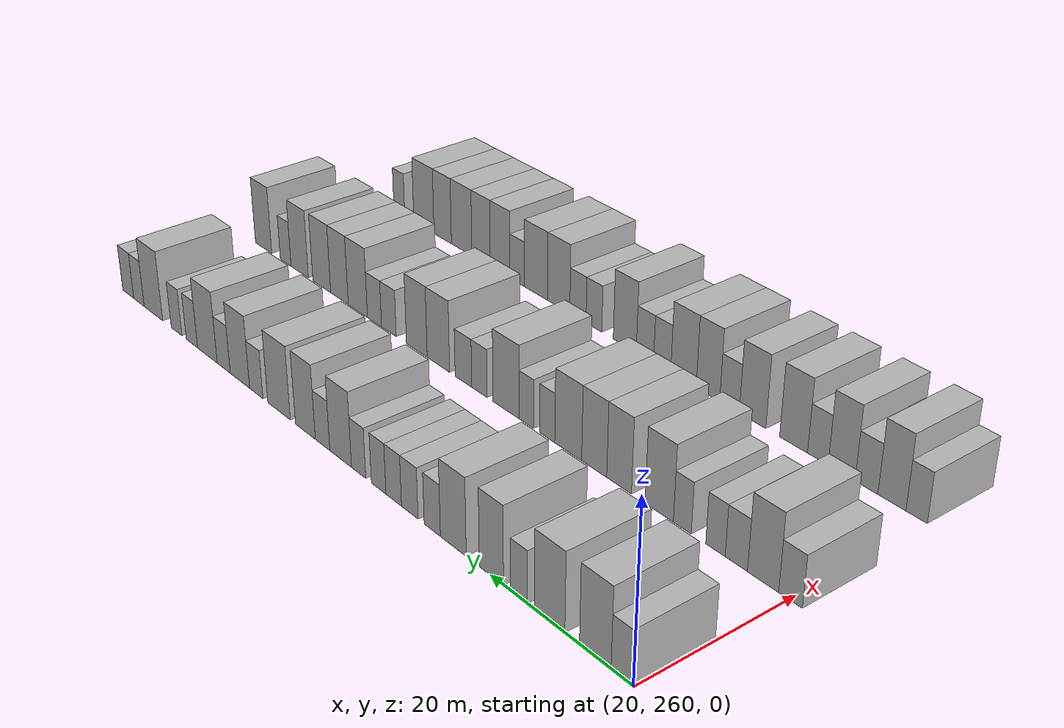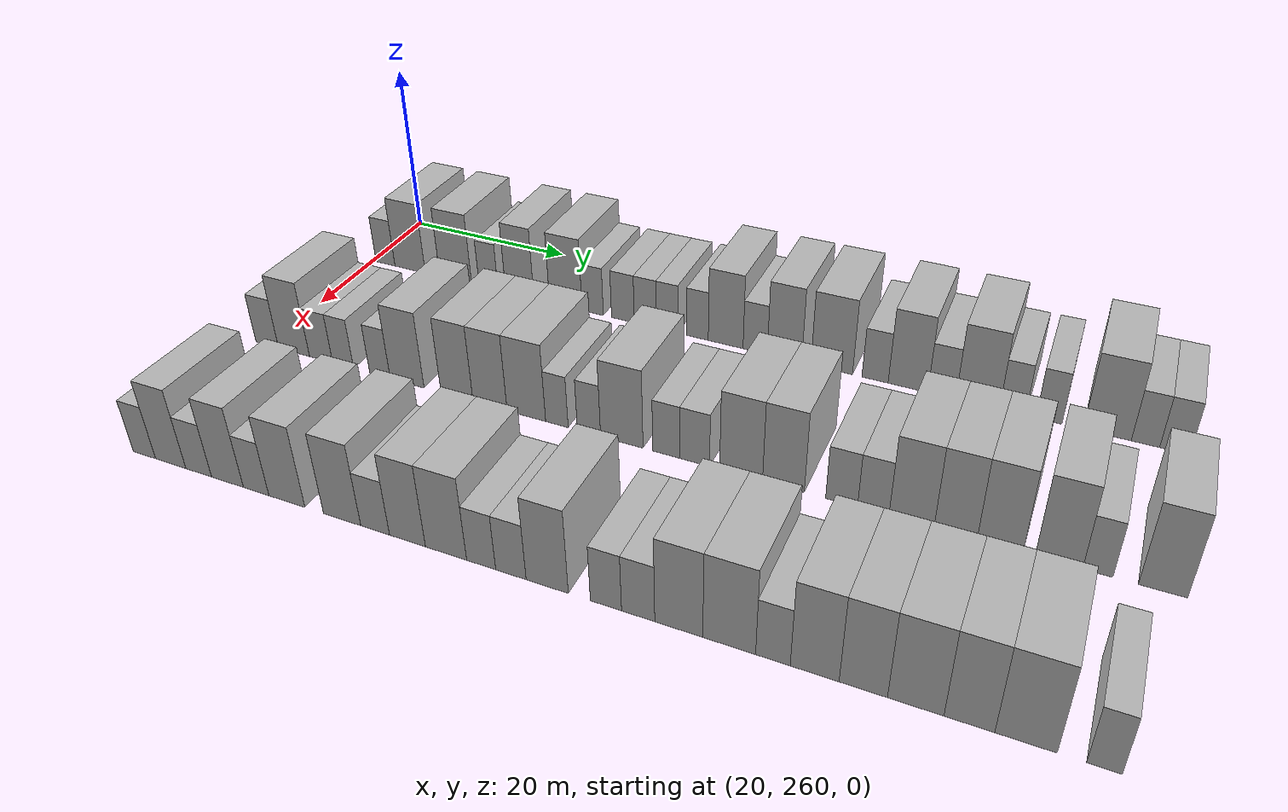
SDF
<sdf version="1.6">
 <world name="default">
  <model name="building_155">
   <static>1</static>
   <pose>25.0000 261.6458 0 0.000000 0.000000 0.000000</pose>
   <link name="link">
    <pose>0 0 3.00 0 0 0</pose>
    <collision name="collision"><geometry><box><size>10.0000 2.6609 6.0000</size></box></geometry></collision>
    <visual name="visual">
     <cast_shadows>0</cast_shadows>
     <geometry><box><size>10.0000 2.6609 6.0000</size></box></geometry>
     <material>
      <script>
       <uri>model://HANNAS_wall/materials/scripts</uri>
       <uri>model://HANNAS_wall/materials/textures</uri>
       <name>vrc/HANNAS_wall</name>
      </script>
     </material>
    </visual>
   </link>
  </model>
  <model name="building_156">
   <static>1</static>
   <pose>25.0000 265.0822 0 0.000000 0.000000 0.000000</pose>
   <link name="link">
    <pose>0 0 4.50 0 0 0</pose>
    <collision name="collision"><geometry><box><size>10.0000 4.2119 9.0000</size></box></geometry></collision>
    <visual name="visual">
     <cast_shadows>0</cast_shadows>
     <geometry><box><size>10.0000 4.2119 9.0000</size></box></geometry>
     <material>
      <script>
       <uri>model://HANNAS_wall/materials/scripts</uri>
       <uri>model://HANNAS_wall/materials/textures</uri>
       <name>vrc/HANNAS_wall</name>
      </script>
     </material>
    </visual>
   </link>
  </model>
  <model name="building_157">
   <static>1</static>
   <pose>25.0000 271.3295 0 0.000000 0.000000 0.000000</pose>
   <link name="link">
    <pose>0 0 4.50 0 0 0</pose>
    <collision name="collision"><geometry><box><size>10.0000 4.2827 9.0000</size></box></geometry></collision>
    <visual name="visual">
     <cast_shadows>0</cast_shadows>
     <geometry><box><size>10.0000 4.2827 9.0000</size></box></geometry>
     <material>
      <script>
       <uri>model://HANNAS_wall/materials/scripts</uri>
       <uri>model://HANNAS_wall/materials/textures</uri>
       <name>vrc/HANNAS_wall</name>
      </script>
     </material>
    </visual>
   </link>
  </model>
  <model name="building_158">
   <static>1</static>
   <pose>25.0000 275.7166 0 0.000000 0.000000 0.000000</pose>
   <link name="link">
    <pose>0 0 3.00 0 0 0</pose>
    <collision name="collision"><geometry><box><size>10.0000 2.4914 6.0000</size></box></geometry></collision>
    <visual name="visual">
     <cast_shadows>0</cast_shadows>
     <geometry><box><size>10.0000 2.4914 6.0000</size></box></geometry>
     <material>
      <script>
       <uri>model://HANNAS_wall/materials/scripts</uri>
       <uri>model://HANNAS_wall/materials/textures</uri>
       <name>vrc/HANNAS_wall</name>
      </script>
     </material>
    </visual>
   </link>
  </model>
  <model name="building_159">
   <static>1</static>
   <pose>25.0000 279.7860 0 0.000000 0.000000 0.000000</pose>
   <link name="link">
    <pose>0 0 4.50 0 0 0</pose>
    <collision name="collision"><geometry><box><size>10.0000 3.6475 9.0000</size></box></geometry></collision>
    <visual name="visual">
     <cast_shadows>0</cast_shadows>
     <geometry><box><size>10.0000 3.6475 9.0000</size></box></geometry>
     <material>
      <script>
       <uri>model://HANNAS_wall/materials/scripts</uri>
       <uri>model://HANNAS_wall/materials/textures</uri>
       <name>vrc/HANNAS_wall</name>
      </script>
     </material>
    </visual>
   </link>
  </model>
  <model name="building_160">
   <static>1</static>
   <pose>25.0000 285.6505 0 0.000000 0.000000 0.000000</pose>
   <link name="link">
    <pose>0 0 4.50 0 0 0</pose>
    <collision name="collision"><geometry><box><size>10.0000 4.0815 9.0000</size></box></geometry></collision>
    <visual name="visual">
     <cast_shadows>0</cast_shadows>
     <geometry><box><size>10.0000 4.0815 9.0000</size></box></geometry>
     <material>
      <script>
       <uri>model://HANNAS_wall/materials/scripts</uri>
       <uri>model://HANNAS_wall/materials/textures</uri>
       <name>vrc/HANNAS_wall</name>
      </script>
     </material>
    </visual>
   </link>
  </model>
  <model name="building_161">
   <static>1</static>
   <pose>25.0000 289.0042 0 0.000000 0.000000 0.000000</pose>
   <link name="link">
    <pose>0 0 3.00 0 0 0</pose>
    <collision name="collision"><geometry><box><size>10.0000 2.6261 6.0000</size></box></geometry></collision>
    <visual name="visual">
     <cast_shadows>0</cast_shadows>
     <geometry><box><size>10.0000 2.6261 6.0000</size></box></geometry>
     <material>
      <script>
       <uri>model://HANNAS_wall/materials/scripts</uri>
       <uri>model://HANNAS_wall/materials/textures</uri>
       <name>vrc/HANNAS_wall</name>
      </script>
     </material>
    </visual>
   </link>
  </model>
  <model name="building_162">
   <static>1</static>
   <pose>25.0000 292.6975 0 0.000000 0.000000 0.000000</pose>
   <link name="link">
    <pose>0 0 3.00 0 0 0</pose>
    <collision name="collision"><geometry><box><size>10.0000 2.7605 6.0000</size></box></geometry></collision>
    <visual name="visual">
     <cast_shadows>0</cast_shadows>
     <geometry><box><size>10.0000 2.7605 6.0000</size></box></geometry>
     <material>
      <script>
       <uri>model://HANNAS_wall/materials/scripts</uri>
       <uri>model://HANNAS_wall/materials/textures</uri>
       <name>vrc/HANNAS_wall</name>
      </script>
     </material>
    </visual>
   </link>
  </model>
  <model name="building_163">
   <static>1</static>
   <pose>25.0000 295.4054 0 0.000000 0.000000 0.000000</pose>
   <link name="link">
    <pose>0 0 3.00 0 0 0</pose>
    <collision name="collision"><geometry><box><size>10.0000 2.6553 6.0000</size></box></geometry></collision>
    <visual name="visual">
     <cast_shadows>0</cast_shadows>
     <geometry><box><size>10.0000 2.6553 6.0000</size></box></geometry>
     <material>
      <script>
       <uri>model://HANNAS_wall/materials/scripts</uri>
       <uri>model://HANNAS_wall/materials/textures</uri>
       <name>vrc/HANNAS_wall</name>
      </script>
     </material>
    </visual>
   </link>
  </model>
  <model name="building_164">
   <static>1</static>
   <pose>25.0000 297.9946 0 0.000000 0.000000 0.000000</pose>
   <link name="link">
    <pose>0 0 3.00 0 0 0</pose>
    <collision name="collision"><geometry><box><size>10.0000 2.5231 6.0000</size></box></geometry></collision>
    <visual name="visual">
     <cast_shadows>0</cast_shadows>
     <geometry><box><size>10.0000 2.5231 6.0000</size></box></geometry>
     <material>
      <script>
       <uri>model://HANNAS_wall/materials/scripts</uri>
       <uri>model://HANNAS_wall/materials/textures</uri>
       <name>vrc/HANNAS_wall</name>
      </script>
     </material>
    </visual>
   </link>
  </model>
  <model name="building_165">
   <static>1</static>
   <pose>25.0000 301.5238 0 0.000000 0.000000 0.000000</pose>
   <link name="link">
    <pose>0 0 3.00 0 0 0</pose>
    <collision name="collision"><geometry><box><size>10.0000 2.5353 6.0000</size></box></geometry></collision>
    <visual name="visual">
     <cast_shadows>0</cast_shadows>
     <geometry><box><size>10.0000 2.5353 6.0000</size></box></geometry>
     <material>
      <script>
       <uri>model://HANNAS_wall/materials/scripts</uri>
       <uri>model://HANNAS_wall/materials/textures</uri>
       <name>vrc/HANNAS_wall</name>
      </script>
     </material>
    </visual>
   </link>
  </model>
  <model name="building_166">
   <static>1</static>
   <pose>25.0000 304.7739 0 0.000000 0.000000 0.000000</pose>
   <link name="link">
    <pose>0 0 4.50 0 0 0</pose>
    <collision name="collision"><geometry><box><size>10.0000 3.9651 9.0000</size></box></geometry></collision>
    <visual name="visual">
     <cast_shadows>0</cast_shadows>
     <geometry><box><size>10.0000 3.9651 9.0000</size></box></geometry>
     <material>
      <script>
       <uri>model://HANNAS_wall/materials/scripts</uri>
       <uri>model://HANNAS_wall/materials/textures</uri>
       <name>vrc/HANNAS_wall</name>
      </script>
     </material>
    </visual>
   </link>
  </model>
  <model name="building_167">
   <static>1</static>
   <pose>25.0000 308.1156 0 0.000000 0.000000 0.000000</pose>
   <link name="link">
    <pose>0 0 3.00 0 0 0</pose>
    <collision name="collision"><geometry><box><size>10.0000 2.7183 6.0000</size></box></geometry></collision>
    <visual name="visual">
     <cast_shadows>0</cast_shadows>
     <geometry><box><size>10.0000 2.7183 6.0000</size></box></geometry>
     <material>
      <script>
       <uri>model://HANNAS_wall/materials/scripts</uri>
       <uri>model://HANNAS_wall/materials/textures</uri>
       <name>vrc/HANNAS_wall</name>
      </script>
     </material>
    </visual>
   </link>
  </model>
  <model name="building_168">
   <static>1</static>
   <pose>25.0000 311.3724 0 0.000000 0.000000 0.000000</pose>
   <link name="link">
    <pose>0 0 4.50 0 0 0</pose>
    <collision name="collision"><geometry><box><size>10.0000 3.7953 9.0000</size></box></geometry></collision>
    <visual name="visual">
     <cast_shadows>0</cast_shadows>
     <geometry><box><size>10.0000 3.7953 9.0000</size></box></geometry>
     <material>
      <script>
       <uri>model://HANNAS_wall/materials/scripts</uri>
       <uri>model://HANNAS_wall/materials/textures</uri>
       <name>vrc/HANNAS_wall</name>
      </script>
     </material>
    </visual>
   </link>
  </model>
  <model name="building_169">
   <static>1</static>
   <pose>25.0000 316.5011 0 0.000000 0.000000 0.000000</pose>
   <link name="link">
    <pose>0 0 4.50 0 0 0</pose>
    <collision name="collision"><geometry><box><size>10.0000 4.4622 9.0000</size></box></geometry></collision>
    <visual name="visual">
     <cast_shadows>0</cast_shadows>
     <geometry><box><size>10.0000 4.4622 9.0000</size></box></geometry>
     <material>
      <script>
       <uri>model://HANNAS_wall/materials/scripts</uri>
       <uri>model://HANNAS_wall/materials/textures</uri>
       <name>vrc/HANNAS_wall</name>
      </script>
     </material>
    </visual>
   </link>
  </model>
  <model name="building_170">
   <static>1</static>
   <pose>25.0000 321.0979 0 0.000000 0.000000 0.000000</pose>
   <link name="link">
    <pose>0 0 3.00 0 0 0</pose>
    <collision name="collision"><geometry><box><size>10.0000 2.7314 6.0000</size></box></geometry></collision>
    <visual name="visual">
     <cast_shadows>0</cast_shadows>
     <geometry><box><size>10.0000 2.7314 6.0000</size></box></geometry>
     <material>
      <script>
       <uri>model://HANNAS_wall/materials/scripts</uri>
       <uri>model://HANNAS_wall/materials/textures</uri>
       <name>vrc/HANNAS_wall</name>
      </script>
     </material>
    </visual>
   </link>
  </model>
  <model name="building_171">
   <static>1</static>
   <pose>25.0000 324.4980 0 0.000000 0.000000 0.000000</pose>
   <link name="link">
    <pose>0 0 4.50 0 0 0</pose>
    <collision name="collision"><geometry><box><size>10.0000 4.0687 9.0000</size></box></geometry></collision>
    <visual name="visual">
     <cast_shadows>0</cast_shadows>
     <geometry><box><size>10.0000 4.0687 9.0000</size></box></geometry>
     <material>
      <script>
       <uri>model://HANNAS_wall/materials/scripts</uri>
       <uri>model://HANNAS_wall/materials/textures</uri>
       <name>vrc/HANNAS_wall</name>
      </script>
     </material>
    </visual>
   </link>
  </model>
  <model name="building_172">
   <static>1</static>
   <pose>25.0000 327.9402 0 0.000000 0.000000 0.000000</pose>
   <link name="link">
    <pose>0 0 3.00 0 0 0</pose>
    <collision name="collision"><geometry><box><size>10.0000 2.8157 6.0000</size></box></geometry></collision>
    <visual name="visual">
     <cast_shadows>0</cast_shadows>
     <geometry><box><size>10.0000 2.8157 6.0000</size></box></geometry>
     <material>
      <script>
       <uri>model://HANNAS_wall/materials/scripts</uri>
       <uri>model://HANNAS_wall/materials/textures</uri>
       <name>vrc/HANNAS_wall</name>
      </script>
     </material>
    </visual>
   </link>
  </model>
  <model name="building_173">
   <static>1</static>
   <pose>25.0000 331.5084 0 0.000000 0.000000 0.000000</pose>
   <link name="link">
    <pose>0 0 4.50 0 0 0</pose>
    <collision name="collision"><geometry><box><size>10.0000 4.3207 9.0000</size></box></geometry></collision>
    <visual name="visual">
     <cast_shadows>0</cast_shadows>
     <geometry><box><size>10.0000 4.3207 9.0000</size></box></geometry>
     <material>
      <script>
       <uri>model://HANNAS_wall/materials/scripts</uri>
       <uri>model://HANNAS_wall/materials/textures</uri>
       <name>vrc/HANNAS_wall</name>
      </script>
     </material>
    </visual>
   </link>
  </model>
  <model name="building_174">
   <static>1</static>
   <pose>25.0000 334.9396 0 0.000000 0.000000 0.000000</pose>
   <link name="link">
    <pose>0 0 3.00 0 0 0</pose>
    <collision name="collision"><geometry><box><size>10.0000 2.5417 6.0000</size></box></geometry></collision>
    <visual name="visual">
     <cast_shadows>0</cast_shadows>
     <geometry><box><size>10.0000 2.5417 6.0000</size></box></geometry>
     <material>
      <script>
       <uri>model://HANNAS_wall/materials/scripts</uri>
       <uri>model://HANNAS_wall/materials/textures</uri>
       <name>vrc/HANNAS_wall</name>
      </script>
     </material>
    </visual>
   </link>
  </model>
  <model name="building_175">
   <static>1</static>
   <pose>25.0000 338.4417 0 0.000000 0.000000 0.000000</pose>
   <link name="link">
    <pose>0 0 3.00 0 0 0</pose>
    <collision name="collision"><geometry><box><size>10.0000 2.4625 6.0000</size></box></geometry></collision>
    <visual name="visual">
     <cast_shadows>0</cast_shadows>
     <geometry><box><size>10.0000 2.4625 6.0000</size></box></geometry>
     <material>
      <script>
       <uri>model://HANNAS_wall/materials/scripts</uri>
       <uri>model://HANNAS_wall/materials/textures</uri>
       <name>vrc/HANNAS_wall</name>
      </script>
     </material>
    </visual>
   </link>
  </model>
  <model name="building_176">
   <static>1</static>
   <pose>25.0000 343.8844 0 0.000000 0.000000 0.000000</pose>
   <link name="link">
    <pose>0 0 4.50 0 0 0</pose>
    <collision name="collision"><geometry><box><size>10.0000 4.4229 9.0000</size></box></geometry></collision>
    <visual name="visual">
     <cast_shadows>0</cast_shadows>
     <geometry><box><size>10.0000 4.4229 9.0000</size></box></geometry>
     <material>
      <script>
       <uri>model://HANNAS_wall/materials/scripts</uri>
       <uri>model://HANNAS_wall/materials/textures</uri>
       <name>vrc/HANNAS_wall</name>
      </script>
     </material>
    </visual>
   </link>
  </model>
  <model name="building_177">
   <static>1</static>
   <pose>25.0000 347.3786 0 0.000000 0.000000 0.000000</pose>
   <link name="link">
    <pose>0 0 3.00 0 0 0</pose>
    <collision name="collision"><geometry><box><size>10.0000 2.5656 6.0000</size></box></geometry></collision>
    <visual name="visual">
     <cast_shadows>0</cast_shadows>
     <geometry><box><size>10.0000 2.5656 6.0000</size></box></geometry>
     <material>
      <script>
       <uri>model://HANNAS_wall/materials/scripts</uri>
       <uri>model://HANNAS_wall/materials/textures</uri>
       <name>vrc/HANNAS_wall</name>
      </script>
     </material>
    </visual>
   </link>
  </model>
  <model name="building_178">
   <static>1</static>
   <pose>25.0000 350.0049 0 0.000000 0.000000 0.000000</pose>
   <link name="link">
    <pose>0 0 3.00 0 0 0</pose>
    <collision name="collision"><geometry><box><size>10.0000 2.6870 6.0000</size></box></geometry></collision>
    <visual name="visual">
     <cast_shadows>0</cast_shadows>
     <geometry><box><size>10.0000 2.6870 6.0000</size></box></geometry>
     <material>
      <script>
       <uri>model://HANNAS_wall/materials/scripts</uri>
       <uri>model://HANNAS_wall/materials/textures</uri>
       <name>vrc/HANNAS_wall</name>
      </script>
     </material>
    </visual>
   </link>
  </model>
  <model name="building_331">
   <static>1</static>
   <pose>44.0000 259.8209 0 0.000000 0.000000 0.000000</pose>
   <link name="link">
    <pose>0 0 3.00 0 0 0</pose>
    <collision name="collision"><geometry><box><size>10.0000 2.9666 6.0000</size></box></geometry></collision>
    <visual name="visual">
     <cast_shadows>0</cast_shadows>
     <geometry><box><size>10.0000 2.9666 6.0000</size></box></geometry>
     <material>
      <script>
       <uri>model://HANNAS_wall/materials/scripts</uri>
       <uri>model://HANNAS_wall/materials/textures</uri>
       <name>vrc/HANNAS_wall</name>
      </script>
     </material>
    </visual>
   </link>
  </model>
  <model name="building_332">
   <static>1</static>
   <pose>44.0000 263.3136 0 0.000000 0.000000 0.000000</pose>
   <link name="link">
    <pose>0 0 4.50 0 0 0</pose>
    <collision name="collision"><geometry><box><size>10.0000 4.0188 9.0000</size></box></geometry></collision>
    <visual name="visual">
     <cast_shadows>0</cast_shadows>
     <geometry><box><size>10.0000 4.0188 9.0000</size></box></geometry>
     <material>
      <script>
       <uri>model://HANNAS_wall/materials/scripts</uri>
       <uri>model://HANNAS_wall/materials/textures</uri>
       <name>vrc/HANNAS_wall</name>
      </script>
     </material>
    </visual>
   </link>
  </model>
  <model name="building_333">
   <static>1</static>
   <pose>44.0000 266.7968 0 0.000000 0.000000 0.000000</pose>
   <link name="link">
    <pose>0 0 3.00 0 0 0</pose>
    <collision name="collision"><geometry><box><size>10.0000 2.9476 6.0000</size></box></geometry></collision>
    <visual name="visual">
     <cast_shadows>0</cast_shadows>
     <geometry><box><size>10.0000 2.9476 6.0000</size></box></geometry>
     <material>
      <script>
       <uri>model://HANNAS_wall/materials/scripts</uri>
       <uri>model://HANNAS_wall/materials/textures</uri>
       <name>vrc/HANNAS_wall</name>
      </script>
     </material>
    </visual>
   </link>
  </model>
  <model name="building_334">
   <static>1</static>
   <pose>44.0000 269.5826 0 0.000000 0.000000 0.000000</pose>
   <link name="link">
    <pose>0 0 3.00 0 0 0</pose>
    <collision name="collision"><geometry><box><size>10.0000 2.6240 6.0000</size></box></geometry></collision>
    <visual name="visual">
     <cast_shadows>0</cast_shadows>
     <geometry><box><size>10.0000 2.6240 6.0000</size></box></geometry>
     <material>
      <script>
       <uri>model://HANNAS_wall/materials/scripts</uri>
       <uri>model://HANNAS_wall/materials/textures</uri>
       <name>vrc/HANNAS_wall</name>
      </script>
     </material>
    </visual>
   </link>
  </model>
  <model name="building_335">
   <static>1</static>
   <pose>44.0000 274.1465 0 0.000000 0.000000 0.000000</pose>
   <link name="link">
    <pose>0 0 3.00 0 0 0</pose>
    <collision name="collision"><geometry><box><size>10.0000 2.5037 6.0000</size></box></geometry></collision>
    <visual name="visual">
     <cast_shadows>0</cast_shadows>
     <geometry><box><size>10.0000 2.5037 6.0000</size></box></geometry>
     <material>
      <script>
       <uri>model://HANNAS_wall/materials/scripts</uri>
       <uri>model://HANNAS_wall/materials/textures</uri>
       <name>vrc/HANNAS_wall</name>
      </script>
     </material>
    </visual>
   </link>
  </model>
  <model name="building_336">
   <static>1</static>
   <pose>44.0000 277.4298 0 0.000000 0.000000 0.000000</pose>
   <link name="link">
    <pose>0 0 4.50 0 0 0</pose>
    <collision name="collision"><geometry><box><size>10.0000 4.0631 9.0000</size></box></geometry></collision>
    <visual name="visual">
     <cast_shadows>0</cast_shadows>
     <geometry><box><size>10.0000 4.0631 9.0000</size></box></geometry>
     <material>
      <script>
       <uri>model://HANNAS_wall/materials/scripts</uri>
       <uri>model://HANNAS_wall/materials/textures</uri>
       <name>vrc/HANNAS_wall</name>
      </script>
     </material>
    </visual>
   </link>
  </model>
  <model name="building_337">
   <static>1</static>
   <pose>44.0000 283.3252 0 0.000000 0.000000 0.000000</pose>
   <link name="link">
    <pose>0 0 4.50 0 0 0</pose>
    <collision name="collision"><geometry><box><size>10.0000 3.7276 9.0000</size></box></geometry></collision>
    <visual name="visual">
     <cast_shadows>0</cast_shadows>
     <geometry><box><size>10.0000 3.7276 9.0000</size></box></geometry>
     <material>
      <script>
       <uri>model://HANNAS_wall/materials/scripts</uri>
       <uri>model://HANNAS_wall/materials/textures</uri>
       <name>vrc/HANNAS_wall</name>
      </script>
     </material>
    </visual>
   </link>
  </model>
  <model name="building_338">
   <static>1</static>
   <pose>44.0000 287.1293 0 0.000000 0.000000 0.000000</pose>
   <link name="link">
    <pose>0 0 4.50 0 0 0</pose>
    <collision name="collision"><geometry><box><size>10.0000 3.8807 9.0000</size></box></geometry></collision>
    <visual name="visual">
     <cast_shadows>0</cast_shadows>
     <geometry><box><size>10.0000 3.8807 9.0000</size></box></geometry>
     <material>
      <script>
       <uri>model://HANNAS_wall/materials/scripts</uri>
       <uri>model://HANNAS_wall/materials/textures</uri>
       <name>vrc/HANNAS_wall</name>
      </script>
     </material>
    </visual>
   </link>
  </model>
  <model name="building_339">
   <static>1</static>
   <pose>44.0000 291.2141 0 0.000000 0.000000 0.000000</pose>
   <link name="link">
    <pose>0 0 4.50 0 0 0</pose>
    <collision name="collision"><geometry><box><size>10.0000 4.2888 9.0000</size></box></geometry></collision>
    <visual name="visual">
     <cast_shadows>0</cast_shadows>
     <geometry><box><size>10.0000 4.2888 9.0000</size></box></geometry>
     <material>
      <script>
       <uri>model://HANNAS_wall/materials/scripts</uri>
       <uri>model://HANNAS_wall/materials/textures</uri>
       <name>vrc/HANNAS_wall</name>
      </script>
     </material>
    </visual>
   </link>
  </model>
  <model name="building_340">
   <static>1</static>
   <pose>44.0000 294.5865 0 0.000000 0.000000 0.000000</pose>
   <link name="link">
    <pose>0 0 3.00 0 0 0</pose>
    <collision name="collision"><geometry><box><size>10.0000 2.4561 6.0000</size></box></geometry></collision>
    <visual name="visual">
     <cast_shadows>0</cast_shadows>
     <geometry><box><size>10.0000 2.4561 6.0000</size></box></geometry>
     <material>
      <script>
       <uri>model://HANNAS_wall/materials/scripts</uri>
       <uri>model://HANNAS_wall/materials/textures</uri>
       <name>vrc/HANNAS_wall</name>
      </script>
     </material>
    </visual>
   </link>
  </model>
  <model name="building_341">
   <static>1</static>
   <pose>44.0000 298.0540 0 0.000000 0.000000 0.000000</pose>
   <link name="link">
    <pose>0 0 3.00 0 0 0</pose>
    <collision name="collision"><geometry><box><size>10.0000 2.4787 6.0000</size></box></geometry></collision>
    <visual name="visual">
     <cast_shadows>0</cast_shadows>
     <geometry><box><size>10.0000 2.4787 6.0000</size></box></geometry>
     <material>
      <script>
       <uri>model://HANNAS_wall/materials/scripts</uri>
       <uri>model://HANNAS_wall/materials/textures</uri>
       <name>vrc/HANNAS_wall</name>
      </script>
     </material>
    </visual>
   </link>
  </model>
  <model name="building_342">
   <static>1</static>
   <pose>44.0000 301.5186 0 0.000000 0.000000 0.000000</pose>
   <link name="link">
    <pose>0 0 4.50 0 0 0</pose>
    <collision name="collision"><geometry><box><size>10.0000 4.4506 9.0000</size></box></geometry></collision>
    <visual name="visual">
     <cast_shadows>0</cast_shadows>
     <geometry><box><size>10.0000 4.4506 9.0000</size></box></geometry>
     <material>
      <script>
       <uri>model://HANNAS_wall/materials/scripts</uri>
       <uri>model://HANNAS_wall/materials/textures</uri>
       <name>vrc/HANNAS_wall</name>
      </script>
     </material>
    </visual>
   </link>
  </model>
  <model name="building_343">
   <static>1</static>
   <pose>44.0000 306.1152 0 0.000000 0.000000 0.000000</pose>
   <link name="link">
    <pose>0 0 3.00 0 0 0</pose>
    <collision name="collision"><geometry><box><size>10.0000 2.7424 6.0000</size></box></geometry></collision>
    <visual name="visual">
     <cast_shadows>0</cast_shadows>
     <geometry><box><size>10.0000 2.7424 6.0000</size></box></geometry>
     <material>
      <script>
       <uri>model://HANNAS_wall/materials/scripts</uri>
       <uri>model://HANNAS_wall/materials/textures</uri>
       <name>vrc/HANNAS_wall</name>
      </script>
     </material>
    </visual>
   </link>
  </model>
  <model name="building_344">
   <static>1</static>
   <pose>44.0000 308.9855 0 0.000000 0.000000 0.000000</pose>
   <link name="link">
    <pose>0 0 3.00 0 0 0</pose>
    <collision name="collision"><geometry><box><size>10.0000 2.9982 6.0000</size></box></geometry></collision>
    <visual name="visual">
     <cast_shadows>0</cast_shadows>
     <geometry><box><size>10.0000 2.9982 6.0000</size></box></geometry>
     <material>
      <script>
       <uri>model://HANNAS_wall/materials/scripts</uri>
       <uri>model://HANNAS_wall/materials/textures</uri>
       <name>vrc/HANNAS_wall</name>
      </script>
     </material>
    </visual>
   </link>
  </model>
  <model name="building_345">
   <static>1</static>
   <pose>44.0000 313.5788 0 0.000000 0.000000 0.000000</pose>
   <link name="link">
    <pose>0 0 4.50 0 0 0</pose>
    <collision name="collision"><geometry><box><size>10.0000 4.1884 9.0000</size></box></geometry></collision>
    <visual name="visual">
     <cast_shadows>0</cast_shadows>
     <geometry><box><size>10.0000 4.1884 9.0000</size></box></geometry>
     <material>
      <script>
       <uri>model://HANNAS_wall/materials/scripts</uri>
       <uri>model://HANNAS_wall/materials/textures</uri>
       <name>vrc/HANNAS_wall</name>
      </script>
     </material>
    </visual>
   </link>
  </model>
  <model name="building_346">
   <static>1</static>
   <pose>44.0000 317.6619 0 0.000000 0.000000 0.000000</pose>
   <link name="link">
    <pose>0 0 4.50 0 0 0</pose>
    <collision name="collision"><geometry><box><size>10.0000 3.9777 9.0000</size></box></geometry></collision>
    <visual name="visual">
     <cast_shadows>0</cast_shadows>
     <geometry><box><size>10.0000 3.9777 9.0000</size></box></geometry>
     <material>
      <script>
       <uri>model://HANNAS_wall/materials/scripts</uri>
       <uri>model://HANNAS_wall/materials/textures</uri>
       <name>vrc/HANNAS_wall</name>
      </script>
     </material>
    </visual>
   </link>
  </model>
  <model name="building_347">
   <static>1</static>
   <pose>44.0000 323.1143 0 0.000000 0.000000 0.000000</pose>
   <link name="link">
    <pose>0 0 3.00 0 0 0</pose>
    <collision name="collision"><geometry><box><size>10.0000 2.9271 6.0000</size></box></geometry></collision>
    <visual name="visual">
     <cast_shadows>0</cast_shadows>
     <geometry><box><size>10.0000 2.9271 6.0000</size></box></geometry>
     <material>
      <script>
       <uri>model://HANNAS_wall/materials/scripts</uri>
       <uri>model://HANNAS_wall/materials/textures</uri>
       <name>vrc/HANNAS_wall</name>
      </script>
     </material>
    </visual>
   </link>
  </model>
  <model name="building_348">
   <static>1</static>
   <pose>44.0000 325.9999 0 0.000000 0.000000 0.000000</pose>
   <link name="link">
    <pose>0 0 3.00 0 0 0</pose>
    <collision name="collision"><geometry><box><size>10.0000 2.8441 6.0000</size></box></geometry></collision>
    <visual name="visual">
     <cast_shadows>0</cast_shadows>
     <geometry><box><size>10.0000 2.8441 6.0000</size></box></geometry>
     <material>
      <script>
       <uri>model://HANNAS_wall/materials/scripts</uri>
       <uri>model://HANNAS_wall/materials/textures</uri>
       <name>vrc/HANNAS_wall</name>
      </script>
     </material>
    </visual>
   </link>
  </model>
  <model name="building_349">
   <static>1</static>
   <pose>44.0000 329.4148 0 0.000000 0.000000 0.000000</pose>
   <link name="link">
    <pose>0 0 4.50 0 0 0</pose>
    <collision name="collision"><geometry><box><size>10.0000 3.9857 9.0000</size></box></geometry></collision>
    <visual name="visual">
     <cast_shadows>0</cast_shadows>
     <geometry><box><size>10.0000 3.9857 9.0000</size></box></geometry>
     <material>
      <script>
       <uri>model://HANNAS_wall/materials/scripts</uri>
       <uri>model://HANNAS_wall/materials/textures</uri>
       <name>vrc/HANNAS_wall</name>
      </script>
     </material>
    </visual>
   </link>
  </model>
  <model name="building_350">
   <static>1</static>
   <pose>44.0000 333.2689 0 0.000000 0.000000 0.000000</pose>
   <link name="link">
    <pose>0 0 4.50 0 0 0</pose>
    <collision name="collision"><geometry><box><size>10.0000 3.7225 9.0000</size></box></geometry></collision>
    <visual name="visual">
     <cast_shadows>0</cast_shadows>
     <geometry><box><size>10.0000 3.7225 9.0000</size></box></geometry>
     <material>
      <script>
       <uri>model://HANNAS_wall/materials/scripts</uri>
       <uri>model://HANNAS_wall/materials/textures</uri>
       <name>vrc/HANNAS_wall</name>
      </script>
     </material>
    </visual>
   </link>
  </model>
  <model name="building_351">
   <static>1</static>
   <pose>44.0000 337.0704 0 0.000000 0.000000 0.000000</pose>
   <link name="link">
    <pose>0 0 4.50 0 0 0</pose>
    <collision name="collision"><geometry><box><size>10.0000 3.8805 9.0000</size></box></geometry></collision>
    <visual name="visual">
     <cast_shadows>0</cast_shadows>
     <geometry><box><size>10.0000 3.8805 9.0000</size></box></geometry>
     <material>
      <script>
       <uri>model://HANNAS_wall/materials/scripts</uri>
       <uri>model://HANNAS_wall/materials/textures</uri>
       <name>vrc/HANNAS_wall</name>
      </script>
     </material>
    </visual>
   </link>
  </model>
  <model name="building_352">
   <static>1</static>
   <pose>44.0000 341.9493 0 0.000000 0.000000 0.000000</pose>
   <link name="link">
    <pose>0 0 4.50 0 0 0</pose>
    <collision name="collision"><geometry><box><size>10.0000 3.8773 9.0000</size></box></geometry></collision>
    <visual name="visual">
     <cast_shadows>0</cast_shadows>
     <geometry><box><size>10.0000 3.8773 9.0000</size></box></geometry>
     <material>
      <script>
       <uri>model://HANNAS_wall/materials/scripts</uri>
       <uri>model://HANNAS_wall/materials/textures</uri>
       <name>vrc/HANNAS_wall</name>
      </script>
     </material>
    </visual>
   </link>
  </model>
  <model name="building_353">
   <static>1</static>
   <pose>44.0000 345.1009 0 0.000000 0.000000 0.000000</pose>
   <link name="link">
    <pose>0 0 3.00 0 0 0</pose>
    <collision name="collision"><geometry><box><size>10.0000 2.4259 6.0000</size></box></geometry></collision>
    <visual name="visual">
     <cast_shadows>0</cast_shadows>
     <geometry><box><size>10.0000 2.4259 6.0000</size></box></geometry>
     <material>
      <script>
       <uri>model://HANNAS_wall/materials/scripts</uri>
       <uri>model://HANNAS_wall/materials/textures</uri>
       <name>vrc/HANNAS_wall</name>
      </script>
     </material>
    </visual>
   </link>
  </model>
  <model name="building_354">
   <static>1</static>
   <pose>44.0000 350.2212 0 0.000000 0.000000 0.000000</pose>
   <link name="link">
    <pose>0 0 4.50 0 0 0</pose>
    <collision name="collision"><geometry><box><size>10.0000 3.8148 9.0000</size></box></geometry></collision>
    <visual name="visual">
     <cast_shadows>0</cast_shadows>
     <geometry><box><size>10.0000 3.8148 9.0000</size></box></geometry>
     <material>
      <script>
       <uri>model://HANNAS_wall/materials/scripts</uri>
       <uri>model://HANNAS_wall/materials/textures</uri>
       <name>vrc/HANNAS_wall</name>
      </script>
     </material>
    </visual>
   </link>
  </model>
  <model name="building_518">
   <static>1</static>
   <pose>63.0000 261.1190 0 0.000000 0.000000 0.000000</pose>
   <link name="link">
    <pose>0 0 3.00 0 0 0</pose>
    <collision name="collision"><geometry><box><size>10.0000 2.6933 6.0000</size></box></geometry></collision>
    <visual name="visual">
     <cast_shadows>0</cast_shadows>
     <geometry><box><size>10.0000 2.6933 6.0000</size></box></geometry>
     <material>
      <script>
       <uri>model://HANNAS_wall/materials/scripts</uri>
       <uri>model://HANNAS_wall/materials/textures</uri>
       <name>vrc/HANNAS_wall</name>
      </script>
     </material>
    </visual>
   </link>
  </model>
  <model name="building_519">
   <static>1</static>
   <pose>63.0000 264.2679 0 0.000000 0.000000 0.000000</pose>
   <link name="link">
    <pose>0 0 4.50 0 0 0</pose>
    <collision name="collision"><geometry><box><size>10.0000 3.6046 9.0000</size></box></geometry></collision>
    <visual name="visual">
     <cast_shadows>0</cast_shadows>
     <geometry><box><size>10.0000 3.6046 9.0000</size></box></geometry>
     <material>
      <script>
       <uri>model://HANNAS_wall/materials/scripts</uri>
       <uri>model://HANNAS_wall/materials/textures</uri>
       <name>vrc/HANNAS_wall</name>
      </script>
     </material>
    </visual>
   </link>
  </model>
  <model name="building_520">
   <static>1</static>
   <pose>63.0000 267.5677 0 0.000000 0.000000 0.000000</pose>
   <link name="link">
    <pose>0 0 3.00 0 0 0</pose>
    <collision name="collision"><geometry><box><size>10.0000 2.9950 6.0000</size></box></geometry></collision>
    <visual name="visual">
     <cast_shadows>0</cast_shadows>
     <geometry><box><size>10.0000 2.9950 6.0000</size></box></geometry>
     <material>
      <script>
       <uri>model://HANNAS_wall/materials/scripts</uri>
       <uri>model://HANNAS_wall/materials/textures</uri>
       <name>vrc/HANNAS_wall</name>
      </script>
     </material>
    </visual>
   </link>
  </model>
  <model name="building_521">
   <static>1</static>
   <pose>63.0000 270.8844 0 0.000000 0.000000 0.000000</pose>
   <link name="link">
    <pose>0 0 4.50 0 0 0</pose>
    <collision name="collision"><geometry><box><size>10.0000 3.6384 9.0000</size></box></geometry></collision>
    <visual name="visual">
     <cast_shadows>0</cast_shadows>
     <geometry><box><size>10.0000 3.6384 9.0000</size></box></geometry>
     <material>
      <script>
       <uri>model://HANNAS_wall/materials/scripts</uri>
       <uri>model://HANNAS_wall/materials/textures</uri>
       <name>vrc/HANNAS_wall</name>
      </script>
     </material>
    </visual>
   </link>
  </model>
  <model name="building_522">
   <static>1</static>
   <pose>63.0000 274.1292 0 0.000000 0.000000 0.000000</pose>
   <link name="link">
    <pose>0 0 3.00 0 0 0</pose>
    <collision name="collision"><geometry><box><size>10.0000 2.8513 6.0000</size></box></geometry></collision>
    <visual name="visual">
     <cast_shadows>0</cast_shadows>
     <geometry><box><size>10.0000 2.8513 6.0000</size></box></geometry>
     <material>
      <script>
       <uri>model://HANNAS_wall/materials/scripts</uri>
       <uri>model://HANNAS_wall/materials/textures</uri>
       <name>vrc/HANNAS_wall</name>
      </script>
     </material>
    </visual>
   </link>
  </model>
  <model name="building_523">
   <static>1</static>
   <pose>63.0000 277.5308 0 0.000000 0.000000 0.000000</pose>
   <link name="link">
    <pose>0 0 4.50 0 0 0</pose>
    <collision name="collision"><geometry><box><size>10.0000 3.9519 9.0000</size></box></geometry></collision>
    <visual name="visual">
     <cast_shadows>0</cast_shadows>
     <geometry><box><size>10.0000 3.9519 9.0000</size></box></geometry>
     <material>
      <script>
       <uri>model://HANNAS_wall/materials/scripts</uri>
       <uri>model://HANNAS_wall/materials/textures</uri>
       <name>vrc/HANNAS_wall</name>
      </script>
     </material>
    </visual>
   </link>
  </model>
  <model name="building_524">
   <static>1</static>
   <pose>63.0000 283.4735 0 0.000000 0.000000 0.000000</pose>
   <link name="link">
    <pose>0 0 4.50 0 0 0</pose>
    <collision name="collision"><geometry><box><size>10.0000 3.9335 9.0000</size></box></geometry></collision>
    <visual name="visual">
     <cast_shadows>0</cast_shadows>
     <geometry><box><size>10.0000 3.9335 9.0000</size></box></geometry>
     <material>
      <script>
       <uri>model://HANNAS_wall/materials/scripts</uri>
       <uri>model://HANNAS_wall/materials/textures</uri>
       <name>vrc/HANNAS_wall</name>
      </script>
     </material>
    </visual>
   </link>
  </model>
  <model name="building_525">
   <static>1</static>
   <pose>63.0000 286.9248 0 0.000000 0.000000 0.000000</pose>
   <link name="link">
    <pose>0 0 3.00 0 0 0</pose>
    <collision name="collision"><geometry><box><size>10.0000 2.9693 6.0000</size></box></geometry></collision>
    <visual name="visual">
     <cast_shadows>0</cast_shadows>
     <geometry><box><size>10.0000 2.9693 6.0000</size></box></geometry>
     <material>
      <script>
       <uri>model://HANNAS_wall/materials/scripts</uri>
       <uri>model://HANNAS_wall/materials/textures</uri>
       <name>vrc/HANNAS_wall</name>
      </script>
     </material>
    </visual>
   </link>
  </model>
  <model name="building_526">
   <static>1</static>
   <pose>63.0000 290.2299 0 0.000000 0.000000 0.000000</pose>
   <link name="link">
    <pose>0 0 4.50 0 0 0</pose>
    <collision name="collision"><geometry><box><size>10.0000 3.6408 9.0000</size></box></geometry></collision>
    <visual name="visual">
     <cast_shadows>0</cast_shadows>
     <geometry><box><size>10.0000 3.6408 9.0000</size></box></geometry>
     <material>
      <script>
       <uri>model://HANNAS_wall/materials/scripts</uri>
       <uri>model://HANNAS_wall/materials/textures</uri>
       <name>vrc/HANNAS_wall</name>
      </script>
     </material>
    </visual>
   </link>
  </model>
  <model name="building_527">
   <static>1</static>
   <pose>63.0000 294.0806 0 0.000000 0.000000 0.000000</pose>
   <link name="link">
    <pose>0 0 4.50 0 0 0</pose>
    <collision name="collision"><geometry><box><size>10.0000 4.0608 9.0000</size></box></geometry></collision>
    <visual name="visual">
     <cast_shadows>0</cast_shadows>
     <geometry><box><size>10.0000 4.0608 9.0000</size></box></geometry>
     <material>
      <script>
       <uri>model://HANNAS_wall/materials/scripts</uri>
       <uri>model://HANNAS_wall/materials/textures</uri>
       <name>vrc/HANNAS_wall</name>
      </script>
     </material>
    </visual>
   </link>
  </model>
  <model name="building_528">
   <static>1</static>
   <pose>63.0000 297.5096 0 0.000000 0.000000 0.000000</pose>
   <link name="link">
    <pose>0 0 3.00 0 0 0</pose>
    <collision name="collision"><geometry><box><size>10.0000 2.7971 6.0000</size></box></geometry></collision>
    <visual name="visual">
     <cast_shadows>0</cast_shadows>
     <geometry><box><size>10.0000 2.7971 6.0000</size></box></geometry>
     <material>
      <script>
       <uri>model://HANNAS_wall/materials/scripts</uri>
       <uri>model://HANNAS_wall/materials/textures</uri>
       <name>vrc/HANNAS_wall</name>
      </script>
     </material>
    </visual>
   </link>
  </model>
  <model name="building_529">
   <static>1</static>
   <pose>63.0000 300.3481 0 0.000000 0.000000 0.000000</pose>
   <link name="link">
    <pose>0 0 3.00 0 0 0</pose>
    <collision name="collision"><geometry><box><size>10.0000 2.8800 6.0000</size></box></geometry></collision>
    <visual name="visual">
     <cast_shadows>0</cast_shadows>
     <geometry><box><size>10.0000 2.8800 6.0000</size></box></geometry>
     <material>
      <script>
       <uri>model://HANNAS_wall/materials/scripts</uri>
       <uri>model://HANNAS_wall/materials/textures</uri>
       <name>vrc/HANNAS_wall</name>
      </script>
     </material>
    </visual>
   </link>
  </model>
  <model name="building_530">
   <static>1</static>
   <pose>63.0000 303.7385 0 0.000000 0.000000 0.000000</pose>
   <link name="link">
    <pose>0 0 4.50 0 0 0</pose>
    <collision name="collision"><geometry><box><size>10.0000 3.9007 9.0000</size></box></geometry></collision>
    <visual name="visual">
     <cast_shadows>0</cast_shadows>
     <geometry><box><size>10.0000 3.9007 9.0000</size></box></geometry>
     <material>
      <script>
       <uri>model://HANNAS_wall/materials/scripts</uri>
       <uri>model://HANNAS_wall/materials/textures</uri>
       <name>vrc/HANNAS_wall</name>
      </script>
     </material>
    </visual>
   </link>
  </model>
  <model name="building_531">
   <static>1</static>
   <pose>63.0000 309.0777 0 0.000000 0.000000 0.000000</pose>
   <link name="link">
    <pose>0 0 3.00 0 0 0</pose>
    <collision name="collision"><geometry><box><size>10.0000 2.7778 6.0000</size></box></geometry></collision>
    <visual name="visual">
     <cast_shadows>0</cast_shadows>
     <geometry><box><size>10.0000 2.7778 6.0000</size></box></geometry>
     <material>
      <script>
       <uri>model://HANNAS_wall/materials/scripts</uri>
       <uri>model://HANNAS_wall/materials/textures</uri>
       <name>vrc/HANNAS_wall</name>
      </script>
     </material>
    </visual>
   </link>
  </model>
  <model name="building_532">
   <static>1</static>
   <pose>63.0000 311.9196 0 0.000000 0.000000 0.000000</pose>
   <link name="link">
    <pose>0 0 3.00 0 0 0</pose>
    <collision name="collision"><geometry><box><size>10.0000 2.9060 6.0000</size></box></geometry></collision>
    <visual name="visual">
     <cast_shadows>0</cast_shadows>
     <geometry><box><size>10.0000 2.9060 6.0000</size></box></geometry>
     <material>
      <script>
       <uri>model://HANNAS_wall/materials/scripts</uri>
       <uri>model://HANNAS_wall/materials/textures</uri>
       <name>vrc/HANNAS_wall</name>
      </script>
     </material>
    </visual>
   </link>
  </model>
  <model name="building_533">
   <static>1</static>
   <pose>63.0000 315.4179 0 0.000000 0.000000 0.000000</pose>
   <link name="link">
    <pose>0 0 4.50 0 0 0</pose>
    <collision name="collision"><geometry><box><size>10.0000 4.0904 9.0000</size></box></geometry></collision>
    <visual name="visual">
     <cast_shadows>0</cast_shadows>
     <geometry><box><size>10.0000 4.0904 9.0000</size></box></geometry>
     <material>
      <script>
       <uri>model://HANNAS_wall/materials/scripts</uri>
       <uri>model://HANNAS_wall/materials/textures</uri>
       <name>vrc/HANNAS_wall</name>
      </script>
     </material>
    </visual>
   </link>
  </model>
  <model name="building_534">
   <static>1</static>
   <pose>63.0000 319.6506 0 0.000000 0.000000 0.000000</pose>
   <link name="link">
    <pose>0 0 4.50 0 0 0</pose>
    <collision name="collision"><geometry><box><size>10.0000 4.3750 9.0000</size></box></geometry></collision>
    <visual name="visual">
     <cast_shadows>0</cast_shadows>
     <geometry><box><size>10.0000 4.3750 9.0000</size></box></geometry>
     <material>
      <script>
       <uri>model://HANNAS_wall/materials/scripts</uri>
       <uri>model://HANNAS_wall/materials/textures</uri>
       <name>vrc/HANNAS_wall</name>
      </script>
     </material>
    </visual>
   </link>
  </model>
  <model name="building_535">
   <static>1</static>
   <pose>63.0000 323.2329 0 0.000000 0.000000 0.000000</pose>
   <link name="link">
    <pose>0 0 3.00 0 0 0</pose>
    <collision name="collision"><geometry><box><size>10.0000 2.7897 6.0000</size></box></geometry></collision>
    <visual name="visual">
     <cast_shadows>0</cast_shadows>
     <geometry><box><size>10.0000 2.7897 6.0000</size></box></geometry>
     <material>
      <script>
       <uri>model://HANNAS_wall/materials/scripts</uri>
       <uri>model://HANNAS_wall/materials/textures</uri>
       <name>vrc/HANNAS_wall</name>
      </script>
     </material>
    </visual>
   </link>
  </model>
  <model name="building_536">
   <static>1</static>
   <pose>63.0000 326.5550 0 0.000000 0.000000 0.000000</pose>
   <link name="link">
    <pose>0 0 4.50 0 0 0</pose>
    <collision name="collision"><geometry><box><size>10.0000 3.8544 9.0000</size></box></geometry></collision>
    <visual name="visual">
     <cast_shadows>0</cast_shadows>
     <geometry><box><size>10.0000 3.8544 9.0000</size></box></geometry>
     <material>
      <script>
       <uri>model://HANNAS_wall/materials/scripts</uri>
       <uri>model://HANNAS_wall/materials/textures</uri>
       <name>vrc/HANNAS_wall</name>
      </script>
     </material>
    </visual>
   </link>
  </model>
  <model name="building_537">
   <static>1</static>
   <pose>63.0000 330.3335 0 0.000000 0.000000 0.000000</pose>
   <link name="link">
    <pose>0 0 4.50 0 0 0</pose>
    <collision name="collision"><geometry><box><size>10.0000 3.7027 9.0000</size></box></geometry></collision>
    <visual name="visual">
     <cast_shadows>0</cast_shadows>
     <geometry><box><size>10.0000 3.7027 9.0000</size></box></geometry>
     <material>
      <script>
       <uri>model://HANNAS_wall/materials/scripts</uri>
       <uri>model://HANNAS_wall/materials/textures</uri>
       <name>vrc/HANNAS_wall</name>
      </script>
     </material>
    </visual>
   </link>
  </model>
  <model name="building_538">
   <static>1</static>
   <pose>63.0000 334.2847 0 0.000000 0.000000 0.000000</pose>
   <link name="link">
    <pose>0 0 4.50 0 0 0</pose>
    <collision name="collision"><geometry><box><size>10.0000 4.1996 9.0000</size></box></geometry></collision>
    <visual name="visual">
     <cast_shadows>0</cast_shadows>
     <geometry><box><size>10.0000 4.1996 9.0000</size></box></geometry>
     <material>
      <script>
       <uri>model://HANNAS_wall/materials/scripts</uri>
       <uri>model://HANNAS_wall/materials/textures</uri>
       <name>vrc/HANNAS_wall</name>
      </script>
     </material>
    </visual>
   </link>
  </model>
  <model name="building_539">
   <static>1</static>
   <pose>63.0000 338.2209 0 0.000000 0.000000 0.000000</pose>
   <link name="link">
    <pose>0 0 4.50 0 0 0</pose>
    <collision name="collision"><geometry><box><size>10.0000 3.6728 9.0000</size></box></geometry></collision>
    <visual name="visual">
     <cast_shadows>0</cast_shadows>
     <geometry><box><size>10.0000 3.6728 9.0000</size></box></geometry>
     <material>
      <script>
       <uri>model://HANNAS_wall/materials/scripts</uri>
       <uri>model://HANNAS_wall/materials/textures</uri>
       <name>vrc/HANNAS_wall</name>
      </script>
     </material>
    </visual>
   </link>
  </model>
  <model name="building_540">
   <static>1</static>
   <pose>63.0000 342.2458 0 0.000000 0.000000 0.000000</pose>
   <link name="link">
    <pose>0 0 4.50 0 0 0</pose>
    <collision name="collision"><geometry><box><size>10.0000 4.3770 9.0000</size></box></geometry></collision>
    <visual name="visual">
     <cast_shadows>0</cast_shadows>
     <geometry><box><size>10.0000 4.3770 9.0000</size></box></geometry>
     <material>
      <script>
       <uri>model://HANNAS_wall/materials/scripts</uri>
       <uri>model://HANNAS_wall/materials/textures</uri>
       <name>vrc/HANNAS_wall</name>
      </script>
     </material>
    </visual>
   </link>
  </model>
  <model name="building_541">
   <static>1</static>
   <pose>63.0000 347.6364 0 0.000000 0.000000 0.000000</pose>
   <link name="link">
    <pose>0 0 3.00 0 0 0</pose>
    <collision name="collision"><geometry><box><size>10.0000 2.4042 6.0000</size></box></geometry></collision>
    <visual name="visual">
     <cast_shadows>0</cast_shadows>
     <geometry><box><size>10.0000 2.4042 6.0000</size></box></geometry>
     <material>
      <script>
       <uri>model://HANNAS_wall/materials/scripts</uri>
       <uri>model://HANNAS_wall/materials/textures</uri>
       <name>vrc/HANNAS_wall</name>
      </script>
     </material>
    </visual>
   </link>
  </model>
 </world>
</sdf>
